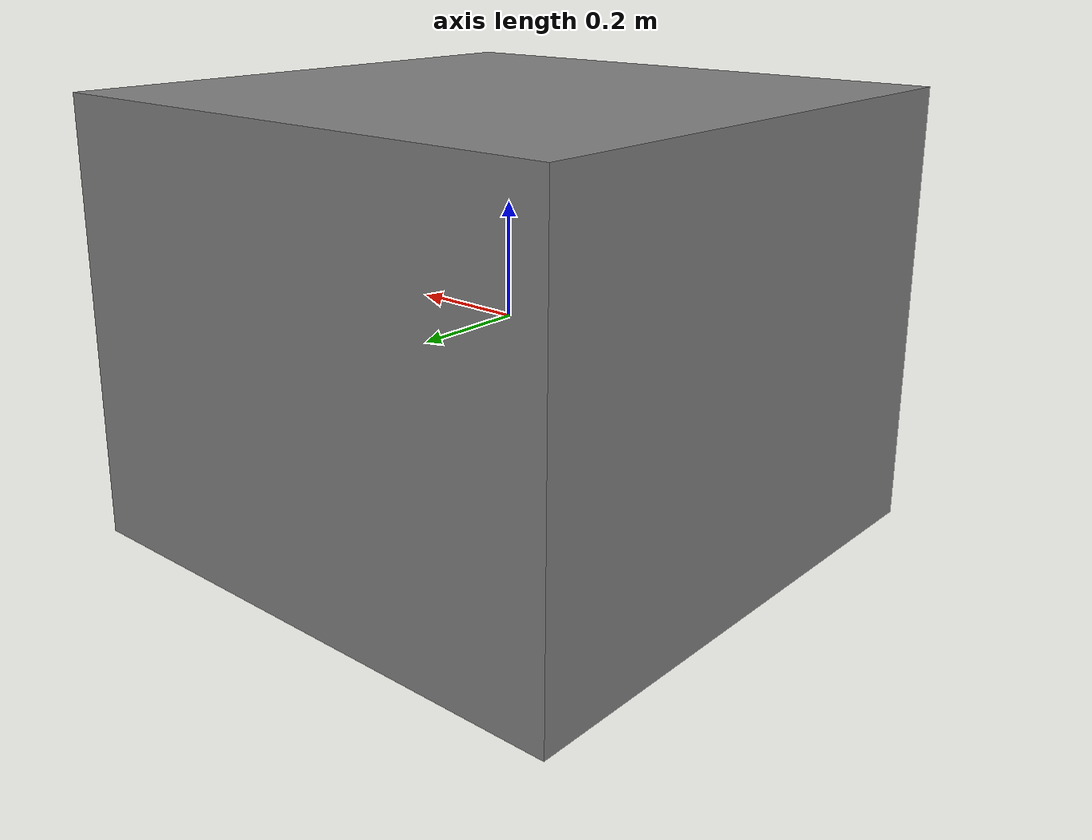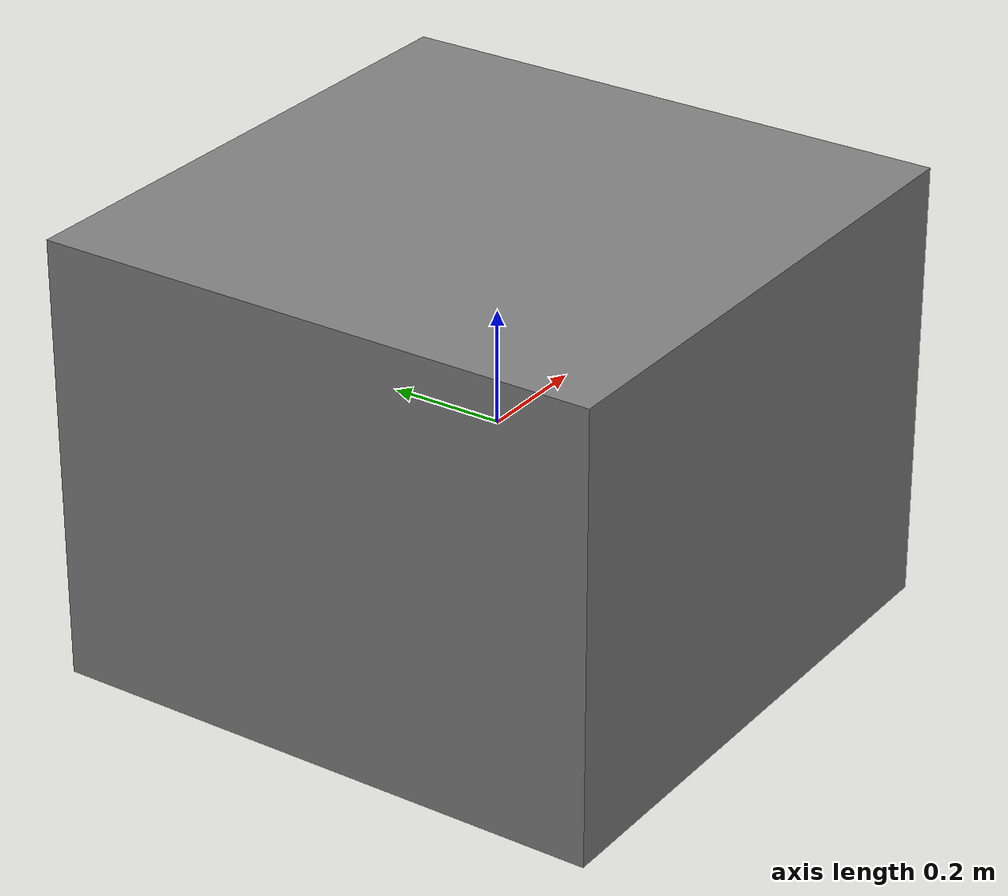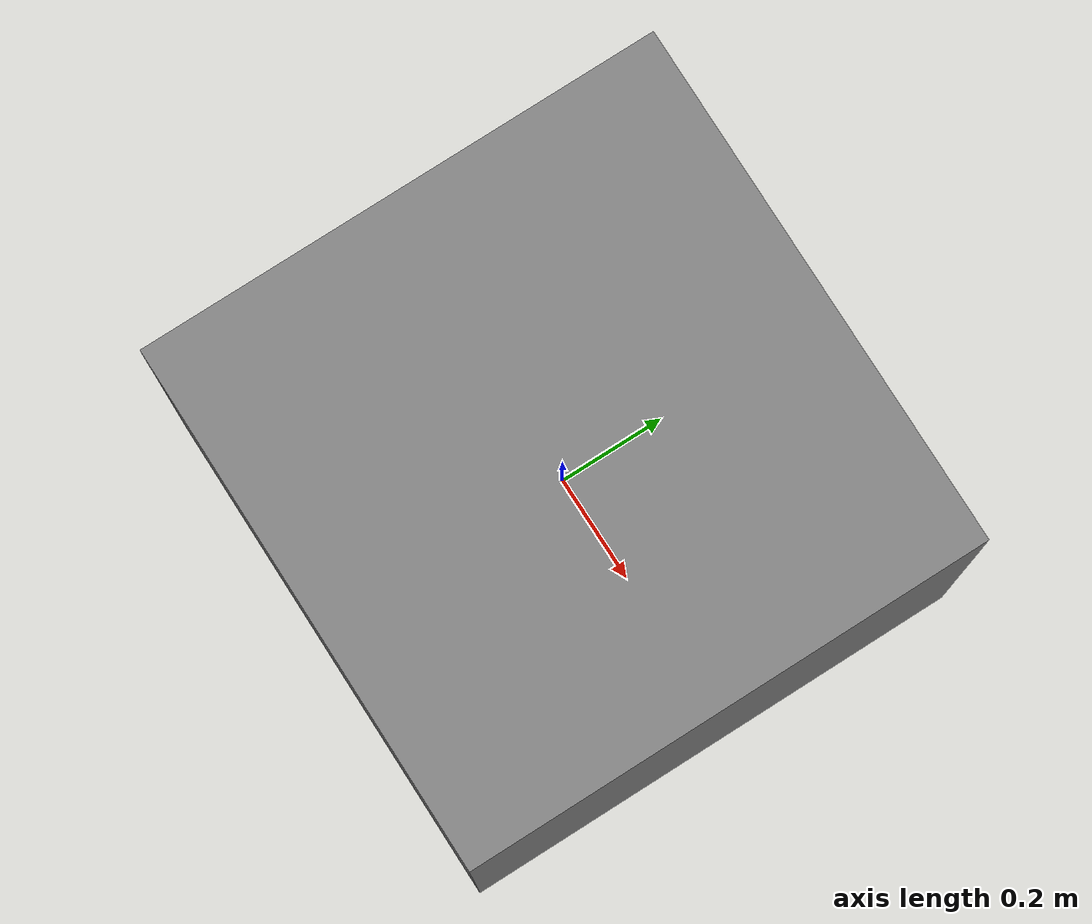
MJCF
<mujoco model="asset">
  <asset>
    <mesh name="mujoco_bunny_visual" file="mujoco_bunny.normalized.obj"/>
    <mesh name="mujoco_bunny_collision" file="mujoco_bunny.collision_box.obj"/>
  </asset>
  <worldbody><body name="mujoco_bunny">
    <geom type="mesh" mesh="mujoco_bunny_visual" contype="0" conaffinity="0" rgba="0.65 0.68 0.72 1"/>
    <geom type="mesh" mesh="mujoco_bunny_collision" density="1000"/>
  </body></worldbody>
</mujoco>
